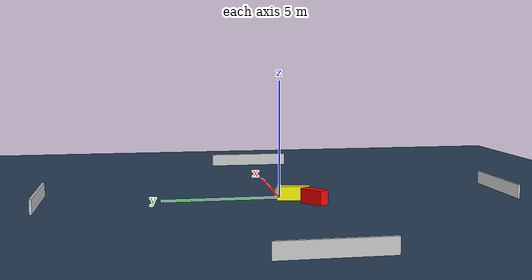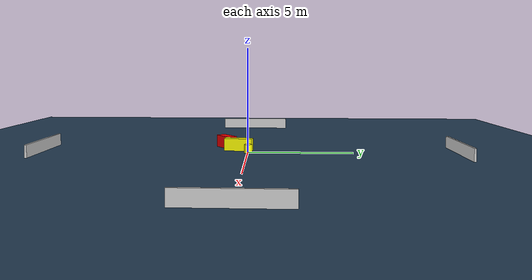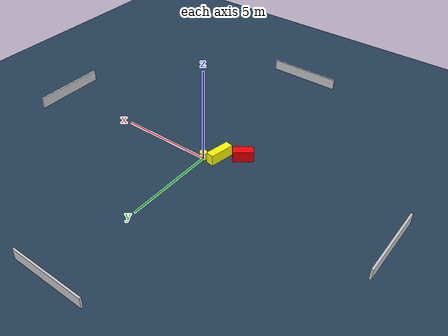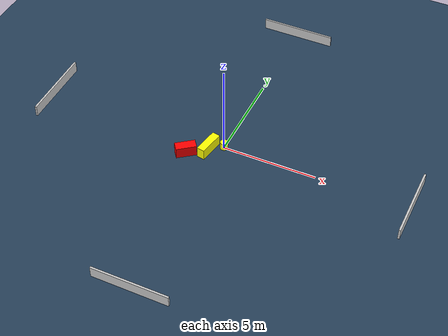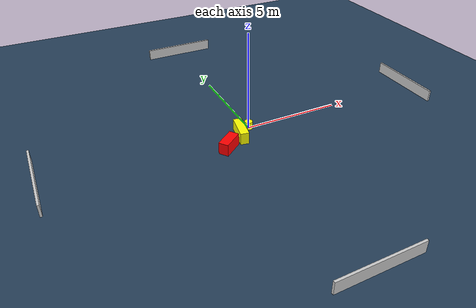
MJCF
<?xml version="1.0" ?>
<mujoco model="generated_environment">
  <option timestep="0.01" integrator="RK4" cone="elliptic"/>
  <default>
    <geom density="1"/>
  </default>
  <asset>
    <texture builtin="gradient" height="3072" name="skybox" rgb1="0.3 0.5 0.7" rgb2="0 0 0" type="skybox" width="512"/>
    <texture builtin="checker" height="300" name="groundplane" rgb1="0.2 0.3 0.4" rgb2="0.1 0.2 0.3" type="2d" width="300"/>
    <material name="groundplane" reflectance="0.2" texrepeat="5 5" texture="groundplane"/>
  </asset>
  <worldbody>
    <light dir="0 0 -1" directional="true" pos="0 0 1.5"/>
    <geom condim="3" friction="0.5 0.005 0.001" material="groundplane" name="floor" pos="0 0 0" size="0 0 0.05" type="plane"/>
    <body name="walls">
      <geom name="wall_1" condim="4" pos="-10.0 0.0 0.3" rgba="0.800000011920929 0.800000011920929 0.800000011920929 1.0" size="0.05 2.0 0.3" type="box"/>
      <geom name="wall_2" condim="4" pos="10.0 0.0 0.3" rgba="0.800000011920929 0.800000011920929 0.800000011920929 1.0" size="0.05 2.0 0.3" type="box"/>
      <geom name="wall_3" condim="4" pos="0.0 -10.0 0.3" rgba="0.800000011920929 0.800000011920929 0.800000011920929 1.0" size="2.0 0.05 0.3" type="box"/>
      <geom name="wall_4" condim="4" pos="0.0 10.0 0.3" rgba="0.800000011920929 0.800000011920929 0.800000011920929 1.0" size="2.0 0.05 0.3" type="box"/>
    </body>
    <body name="robot">
      <joint name="joint_x" type="slide" pos="0 0 0" axis="1 0 0"/>
      <joint name="joint_y" type="slide" pos="0 0 0" axis="0 1 0"/>
      <geom name="robot" type="cylinder" pos="0.0 0.0 0.2" size="0.2 0.2 0.0" mass="5.0" friction="1.0 0.005 0.0001" condim="4" rgba="1.0 1.0 0.0 1.0"/>
    </body>
    <body name="obstacle_1_movable">
      <geom name="obstacle_1_movable" condim="4" pos="-0.6474267960786703 -0.48607415754781436 0.3" euler="0 0 79.50954324857562" friction="0.0 0.005 0.001" rgba="1.0 1.0 0.0 1.0" size="0.6840450243899343 0.2112514769010595 0.3" type="box" mass="0.1"/>
      <joint type="free"/>
    </body>
    <body name="obstacle_2_static">
      <geom name="obstacle_2_static" condim="4" pos="-1.6064245239146095 -1.17305799334618 0.3" euler="0 0 127.2661368640587" friction="0.0 0.005 0.001" rgba="1.0 0.0 0.0 1.0" size="0.2461384428639868 0.5352343625887279 0.3" type="box"/>
    </body>
  </worldbody>
  <actuator>
    <motor name="actuator_x" joint="joint_x" gear="1" ctrlrange="-1 1"/>
    <motor name="actuator_y" joint="joint_y" gear="1" ctrlrange="-1 1"/>
  </actuator>
</mujoco>
